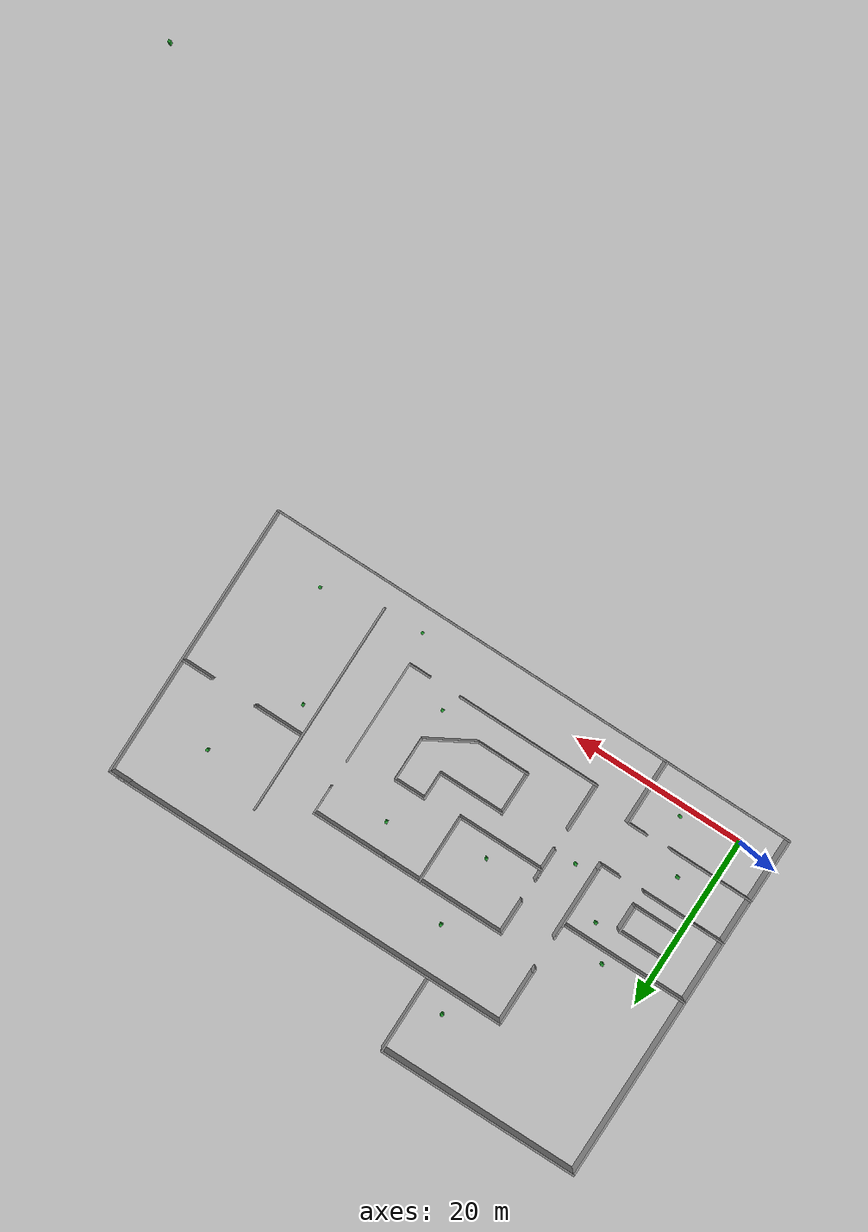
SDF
<sdf version="1.4">
 <world name="default">
  <light name="sun" type="directional">
   <pose>0 0 10 0 -0 0</pose>
   <diffuse>0.8 0.8 0.8 1</diffuse>
   <specular>0.2 0.2 0.2 1</specular>
   <attenuation>
    <range>1000</range>
    <constant>0.9</constant>
    <linear>0.01</linear>
    <quadratic>0.001</quadratic>
   </attenuation>
   <direction>-0.5 0.1 -0.9</direction>
  </light>
  <model name="ground_plane">
   <static>1</static>
   <link name="link">
    <collision name="collision">
     <geometry><plane><normal>0 0 1</normal><size>100 100</size></plane></geometry>
     <surface><friction><ode><mu>100</mu><mu2>50</mu2></ode></friction></surface>
    </collision>
    <visual name="visual">
     <cast_shadows>0</cast_shadows>
     <geometry><plane><normal>0 0 1</normal><size>100 100</size></plane></geometry>
     <material>
      <script><uri>file://media/materials/scripts/gazebo.material</uri><name>Gazebo/Grey</name></script>
     </material>
    </visual>
    <velocity_decay><linear>0</linear><angular>0</angular></velocity_decay>
   </link>
  </model>
  <physics type="ode">
   <max_step_size>0.001</max_step_size>
   <real_time_factor>1</real_time_factor>
   <real_time_update_rate>1000</real_time_update_rate>
   <gravity>0 0 -9.8</gravity>
  </physics>
  <scene><ambient>0.4 0.4 0.4 1</ambient><background>0.7 0.7 0.7 1</background><shadows>1</shadows></scene>
  <spherical_coordinates>
   <surface_model>EARTH_WGS84</surface_model>
   <latitude_deg>0</latitude_deg>
   <longitude_deg>0</longitude_deg>
   <elevation>0</elevation>
   <heading_deg>0</heading_deg>
  </spherical_coordinates>
  <model name="watchman_arena">
   <link name="Wall_14">
    <collision name="Wall_14_Collision">
     <geometry><box><size>7.90415 0.2 2.5</size></box></geometry>
     <pose>0 0 1.25 0 -0 0</pose>
    </collision>
    <visual name="Wall_14_Visual">
     <pose>0 0 1.25 0 -0 0</pose>
     <geometry><box><size>7.90415 0.2 2.5</size></box></geometry>
     <material>
      <script><uri>file://media/materials/scripts/gazebo.material</uri><name>Gazebo/Grey</name></script>
     </material>
    </visual>
    <velocity_decay><linear>0</linear><angular>0</angular></velocity_decay>
    <pose>4.93429 1.11862 0 0 0 -1.5708</pose>
   </link>
   <link name="Wall_15">
    <collision name="Wall_15_Collision">
     <geometry><box><size>10.1204 0.2 2.5</size></box></geometry>
     <pose>0 0 1.25 0 -0 0</pose>
    </collision>
    <visual name="Wall_15_Visual">
     <pose>0 0 1.25 0 -0 0</pose>
     <geometry><box><size>10.1204 0.2 2.5</size></box></geometry>
     <material>
      <script><uri>file://media/materials/scripts/gazebo.material</uri><name>Gazebo/Grey</name></script>
     </material>
    </visual>
    <velocity_decay><linear>0</linear><angular>0</angular></velocity_decay>
    <pose>-0.025919 -2.73345 0 0 -0 3.14159</pose>
   </link>
   <link name="Wall_16">
    <collision name="Wall_16_Collision">
     <geometry><box><size>1.46643 0.2 2.5</size></box></geometry>
     <pose>0 0 1.25 0 -0 0</pose>
    </collision>
    <visual name="Wall_16_Visual">
     <pose>0 0 1.25 0 -0 0</pose>
     <geometry><box><size>1.46643 0.2 2.5</size></box></geometry>
     <material>
      <script><uri>file://media/materials/scripts/gazebo.material</uri><name>Gazebo/Grey</name></script>
     </material>
    </visual>
    <velocity_decay><linear>0</linear><angular>0</angular></velocity_decay>
    <pose>-4.98613 -2.10024 0 0 -0 1.5708</pose>
   </link>
   <link name="Wall_17">
    <collision name="Wall_17_Collision">
     <geometry><box><size>3.89377 0.2 2.5</size></box></geometry>
     <pose>0 0 1.25 0 -0 0</pose>
    </collision>
    <visual name="Wall_17_Visual">
     <pose>0 0 1.25 0 -0 0</pose>
     <geometry><box><size>3.89377 0.2 2.5</size></box></geometry>
     <material>
      <script><uri>file://media/materials/scripts/gazebo.material</uri><name>Gazebo/Grey</name></script>
     </material>
    </visual>
    <velocity_decay><linear>0</linear><angular>0</angular></velocity_decay>
    <pose>-4.98613 -3.3139 0 0 0 -1.5708</pose>
   </link>
   <link name="Wall_23">
    <collision name="Wall_23_Collision">
     <geometry><box><size>5.58459 0.2 2.5</size></box></geometry>
     <pose>0 0 1.25 0 -0 0</pose>
    </collision>
    <visual name="Wall_23_Visual">
     <pose>0 0 1.25 0 -0 0</pose>
     <geometry><box><size>5.58459 0.2 2.5</size></box></geometry>
     <material>
      <script><uri>file://media/materials/scripts/gazebo.material</uri><name>Gazebo/Grey</name></script>
     </material>
    </visual>
    <velocity_decay><linear>0</linear><angular>0</angular></velocity_decay>
    <pose>-4.994 -10.3752 0 0 0 -1.5708</pose>
   </link>
   <link name="Wall_24">
    <collision name="Wall_24_Collision">
     <geometry><box><size>16.8586 0.2 2.5</size></box></geometry>
     <pose>0 0 1.25 0 -0 0</pose>
    </collision>
    <visual name="Wall_24_Visual">
     <pose>0 0 1.25 0 -0 0</pose>
     <geometry><box><size>16.8586 0.2 2.5</size></box></geometry>
     <material>
      <script><uri>file://media/materials/scripts/gazebo.material</uri><name>Gazebo/Grey</name></script>
     </material>
    </visual>
    <velocity_decay><linear>0</linear><angular>0</angular></velocity_decay>
    <pose>3.3353 -13.0675 0 0 -0 0</pose>
   </link>
   <link name="Wall_26">
    <collision name="Wall_26_Collision">
     <geometry><box><size>11.9967 0.2 2.5</size></box></geometry>
     <pose>0 0 1.25 0 -0 0</pose>
    </collision>
    <visual name="Wall_26_Visual">
     <pose>0 0 1.25 0 -0 0</pose>
     <geometry><box><size>11.9967 0.2 2.5</size></box></geometry>
     <material>
      <script><uri>file://media/materials/scripts/gazebo.material</uri><name>Gazebo/Grey</name></script>
     </material>
    </visual>
    <velocity_decay><linear>0</linear><angular>0</angular></velocity_decay>
    <pose>17.8634 -7.19918 0 0 0 -1.5708</pose>
   </link>
   <link name="Wall_27">
    <collision name="Wall_27_Collision">
     <geometry><box><size>2.68305 0.2 2.5</size></box></geometry>
     <pose>0 0 1.25 0 -0 0</pose>
    </collision>
    <visual name="Wall_27_Visual">
     <pose>0 0 1.25 0 -0 0</pose>
     <geometry><box><size>2.68305 0.2 2.5</size></box></geometry>
     <material>
      <script><uri>file://media/materials/scripts/gazebo.material</uri><name>Gazebo/Grey</name></script>
     </material>
    </visual>
    <velocity_decay><linear>0</linear><angular>0</angular></velocity_decay>
    <pose>16.6219 -13.0975 0 0 -0 3.14159</pose>
   </link>
   <link name="Wall_29">
    <collision name="Wall_29_Collision">
     <geometry><box><size>7.64487 0.2 2.5</size></box></geometry>
     <pose>0 0 1.25 0 -0 0</pose>
    </collision>
    <visual name="Wall_29_Visual">
     <pose>0 0 1.25 0 -0 0</pose>
     <geometry><box><size>7.64487 0.2 2.5</size></box></geometry>
     <material>
      <script><uri>file://media/materials/scripts/gazebo.material</uri><name>Gazebo/Grey</name></script>
     </material>
    </visual>
    <velocity_decay><linear>0</linear><angular>0</angular></velocity_decay>
    <pose>5.38208 -5.40656 0 0 -0 0</pose>
   </link>
   <link name="Wall_3">
    <collision name="Wall_3_Collision">
     <geometry><box><size>4.07797 0.2 2.5</size></box></geometry>
     <pose>0 0 1.25 0 -0 0</pose>
    </collision>
    <visual name="Wall_3_Visual">
     <pose>0 0 1.25 0 -0 0</pose>
     <geometry><box><size>4.07797 0.2 2.5</size></box></geometry>
     <material>
      <script><uri>file://media/materials/scripts/gazebo.material</uri><name>Gazebo/Grey</name></script>
     </material>
    </visual>
    <velocity_decay><linear>0</linear><angular>0</angular></velocity_decay>
    <pose>-4.98885 3.06689 0 0 -0 1.5708</pose>
   </link>
   <link name="Wall_30">
    <collision name="Wall_30_Collision">
     <geometry><box><size>3.27639 0.2 2.5</size></box></geometry>
     <pose>0 0 1.25 0 -0 0</pose>
    </collision>
    <visual name="Wall_30_Visual">
     <pose>0 0 1.25 0 -0 0</pose>
     <geometry><box><size>3.27639 0.2 2.5</size></box></geometry>
     <material>
      <script><uri>file://media/materials/scripts/gazebo.material</uri><name>Gazebo/Grey</name></script>
     </material>
    </visual>
    <velocity_decay><linear>0</linear><angular>0</angular></velocity_decay>
    <pose>9.10452 -3.86836 0 0 -0 1.5708</pose>
   </link>
   <link name="Wall_31">
    <collision name="Wall_31_Collision">
     <geometry><box><size>3.76862 0.2 2.5</size></box></geometry>
     <pose>0 0 1.25 0 -0 0</pose>
    </collision>
    <visual name="Wall_31_Visual">
     <pose>0 0 1.25 0 -0 0</pose>
     <geometry><box><size>3.76862 0.2 2.5</size></box></geometry>
     <material>
      <script><uri>file://media/materials/scripts/gazebo.material</uri><name>Gazebo/Grey</name></script>
     </material>
    </visual>
    <velocity_decay><linear>0</linear><angular>0</angular></velocity_decay>
    <pose>10.8888 -2.33016 0 0 -0 0</pose>
   </link>
   <link name="Wall_32">
    <collision name="Wall_32_Collision">
     <geometry><box><size>5.18376 0.2 2.5</size></box></geometry>
     <pose>0 0 1.25 0 -0 0</pose>
    </collision>
    <visual name="Wall_32_Visual">
     <pose>0 0 1.25 0 -0 0</pose>
     <geometry><box><size>5.18376 0.2 2.5</size></box></geometry>
     <material>
      <script><uri>file://media/materials/scripts/gazebo.material</uri><name>Gazebo/Grey</name></script>
     </material>
    </visual>
    <velocity_decay><linear>0</linear><angular>0</angular></velocity_decay>
    <pose>12.6731 -4.82204 0 0 0 -1.5708</pose>
   </link>
   <link name="Wall_33">
    <collision name="Wall_33_Collision">
     <geometry><box><size>6.01528 0.2 2.5</size></box></geometry>
     <pose>0 0 1.25 0 -0 0</pose>
    </collision>
    <visual name="Wall_33_Visual">
     <pose>0 0 1.25 0 -0 0</pose>
     <geometry><box><size>6.01528 0.2 2.5</size></box></geometry>
     <material>
      <script><uri>file://media/materials/scripts/gazebo.material</uri><name>Gazebo/Grey</name></script>
     </material>
    </visual>
    <velocity_decay><linear>0</linear><angular>0</angular></velocity_decay>
    <pose>10.1505 -8.75982 0 0 0 -2.62113</pose>
   </link>
   <link name="Wall_34">
    <collision name="Wall_34_Collision">
     <geometry><box><size>6.22973 0.2 2.5</size></box></geometry>
     <pose>0 0 1.25 0 -0 0</pose>
    </collision>
    <visual name="Wall_34_Visual">
     <pose>0 0 1.25 0 -0 0</pose>
     <geometry><box><size>6.22973 0.2 2.5</size></box></geometry>
     <material>
      <script><uri>file://media/materials/scripts/gazebo.material</uri><name>Gazebo/Grey</name></script>
     </material>
    </visual>
    <velocity_decay><linear>0</linear><angular>0</angular></velocity_decay>
    <pose>4.61299 -10.2057 0 0 -0 3.14159</pose>
   </link>
   <link name="Wall_35">
    <collision name="Wall_35_Collision">
     <geometry><box><size>5.0607 0.2 2.5</size></box></geometry>
     <pose>0 0 1.25 0 -0 0</pose>
    </collision>
    <visual name="Wall_35_Visual">
     <pose>0 0 1.25 0 -0 0</pose>
     <geometry><box><size>5.0607 0.2 2.5</size></box></geometry>
     <material>
      <script><uri>file://media/materials/scripts/gazebo.material</uri><name>Gazebo/Grey</name></script>
     </material>
    </visual>
    <velocity_decay><linear>0</linear><angular>0</angular></velocity_decay>
    <pose>1.59812 -7.77538 0 0 -0 1.5708</pose>
   </link>
   <link name="Wall_37">
    <collision name="Wall_37_Collision">
     <geometry><box><size>24.6234 0.2 2.5</size></box></geometry>
     <pose>0 0 1.25 0 -0 0</pose>
    </collision>
    <visual name="Wall_37_Visual">
     <pose>0 0 1.25 0 -0 0</pose>
     <geometry><box><size>24.6234 0.2 2.5</size></box></geometry>
     <material>
      <script><uri>file://media/materials/scripts/gazebo.material</uri><name>Gazebo/Grey</name></script>
     </material>
    </visual>
    <velocity_decay><linear>0</linear><angular>0</angular></velocity_decay>
    <pose>23.1272 -4.24752 0 0 0 -1.5708</pose>
   </link>
   <link name="Wall_38">
    <collision name="Wall_38_Collision">
     <geometry><box><size>15.7337 0.2 2.5</size></box></geometry>
     <pose>0 0 1.25 0 -0 0</pose>
    </collision>
    <visual name="Wall_38_Visual">
     <pose>0 0 1.25 0 -0 0</pose>
     <geometry><box><size>15.7337 0.2 2.5</size></box></geometry>
     <material>
      <script><uri>file://media/materials/scripts/gazebo.material</uri><name>Gazebo/Grey</name></script>
     </material>
    </visual>
    <velocity_decay><linear>0</linear><angular>0</angular></velocity_decay>
    <pose>23.1272 -8.69239 0 0 -0 1.5708</pose>
   </link>
   <link name="Wall_39">
    <collision name="Wall_39_Collision">
     <geometry><box><size>5.90815 0.2 2.5</size></box></geometry>
     <pose>0 0 1.25 0 -0 0</pose>
    </collision>
    <visual name="Wall_39_Visual">
     <pose>0 0 1.25 0 -0 0</pose>
     <geometry><box><size>5.90815 0.2 2.5</size></box></geometry>
     <material>
      <script><uri>file://media/materials/scripts/gazebo.material</uri><name>Gazebo/Grey</name></script>
     </material>
    </visual>
    <velocity_decay><linear>0</linear><angular>0</angular></velocity_decay>
    <pose>25.9813 -0.925564 0 0 -0 0</pose>
   </link>
   <link name="Wall_4">
    <collision name="Wall_4_Collision">
     <geometry><box><size>14.5557 0.2 2.5</size></box></geometry>
     <pose>0 0 1.25 0 -0 0</pose>
    </collision>
    <visual name="Wall_4_Visual">
     <pose>0 0 1.25 0 -0 0</pose>
     <geometry><box><size>14.5557 0.2 2.5</size></box></geometry>
     <material>
      <script><uri>file://media/materials/scripts/gazebo.material</uri><name>Gazebo/Grey</name></script>
     </material>
    </visual>
    <velocity_decay><linear>0</linear><angular>0</angular></velocity_decay>
    <pose>2.18898 5.00587 0 0 -0 0</pose>
   </link>
   <link name="Wall_40">
    <collision name="Wall_40_Collision">
     <geometry><box><size>0.387152 0.2 2.5</size></box></geometry>
     <pose>0 0 1.25 0 -0 0</pose>
    </collision>
    <visual name="Wall_40_Visual">
     <pose>0 0 1.25 0 -0 0</pose>
     <geometry><box><size>0.387152 0.2 2.5</size></box></geometry>
     <material>
      <script><uri>file://media/materials/scripts/gazebo.material</uri><name>Gazebo/Grey</name></script>
     </material>
    </visual>
    <velocity_decay><linear>0</linear><angular>0</angular></velocity_decay>
    <pose>28.7418 -0.925564 0 0 -0 3.14159</pose>
   </link>
   <link name="Wall_46">
    <collision name="Wall_46_Collision">
     <geometry><box><size>46.801 0.2 2.5</size></box></geometry>
     <pose>0 0 1.25 0 -0 0</pose>
    </collision>
    <visual name="Wall_46_Visual">
     <pose>0 0 1.25 0 -0 0</pose>
     <geometry><box><size>46.801 0.2 2.5</size></box></geometry>
     <material>
      <script><uri>file://media/materials/scripts/gazebo.material</uri><name>Gazebo/Grey</name></script>
     </material>
    </visual>
    <velocity_decay><linear>0</linear><angular>0</angular></velocity_decay>
    <pose>13.3965 12.8024 0 0 -0 3.14159</pose>
   </link>
   <link name="Wall_47">
    <collision name="Wall_47_Collision">
     <geometry><box><size>6.46961 0.2 2.5</size></box></geometry>
     <pose>0 0 1.25 0 -0 0</pose>
    </collision>
    <visual name="Wall_47_Visual">
     <pose>0 0 1.25 0 -0 0</pose>
     <geometry><box><size>6.46961 0.2 2.5</size></box></geometry>
     <material>
      <script><uri>file://media/materials/scripts/gazebo.material</uri><name>Gazebo/Grey</name></script>
     </material>
    </visual>
    <velocity_decay><linear>0</linear><angular>0</angular></velocity_decay>
    <pose>-9.90394 9.66757 0 0 0 -1.5708</pose>
   </link>
   <link name="Wall_48">
    <collision name="Wall_48_Collision">
     <geometry><box><size>0.574305 0.2 2.5</size></box></geometry>
     <pose>0 0 1.25 0 -0 0</pose>
    </collision>
    <visual name="Wall_48_Visual">
     <pose>0 0 1.25 0 -0 0</pose>
     <geometry><box><size>0.574305 0.2 2.5</size></box></geometry>
     <material>
      <script><uri>file://media/materials/scripts/gazebo.material</uri><name>Gazebo/Grey</name></script>
     </material>
    </visual>
    <velocity_decay><linear>0</linear><angular>0</angular></velocity_decay>
    <pose>-9.90394 6.34562 0 0 0 -1.5708</pose>
   </link>
   <link name="Wall_5">
    <collision name="Wall_5_Collision">
     <geometry><box><size>8.6429 0.2 2.5</size></box></geometry>
     <pose>0 0 1.25 0 -0 0</pose>
    </collision>
    <visual name="Wall_5_Visual">
     <pose>0 0 1.25 0 -0 0</pose>
     <geometry><box><size>8.6429 0.2 2.5</size></box></geometry>
     <material>
      <script><uri>file://media/materials/scripts/gazebo.material</uri><name>Gazebo/Grey</name></script>
     </material>
    </visual>
    <velocity_decay><linear>0</linear><angular>0</angular></velocity_decay>
    <pose>13.5883 5.00587 0 0 -0 0</pose>
   </link>
   <link name="Wall_50">
    <collision name="Wall_50_Collision">
     <geometry><box><size>10.6805 0.2 2.5</size></box></geometry>
     <pose>0 0 1.25 0 -0 0</pose>
    </collision>
    <visual name="Wall_50_Visual">
     <pose>0 0 1.25 0 -0 0</pose>
     <geometry><box><size>10.6805 0.2 2.5</size></box></geometry>
     <material>
      <script><uri>file://media/materials/scripts/gazebo.material</uri><name>Gazebo/Grey</name></script>
     </material>
    </visual>
    <velocity_decay><linear>0</linear><angular>0</angular></velocity_decay>
    <pose>-15.3314 0.731043 0 0 -0 0</pose>
   </link>
   <link name="Wall_51">
    <collision name="Wall_51_Collision">
     <geometry><box><size>0.480729 0.2 2.5</size></box></geometry>
     <pose>0 0 1.25 0 -0 0</pose>
    </collision>
    <visual name="Wall_51_Visual">
     <pose>0 0 1.25 0 -0 0</pose>
     <geometry><box><size>0.480729 0.2 2.5</size></box></geometry>
     <material>
      <script><uri>file://media/materials/scripts/gazebo.material</uri><name>Gazebo/Grey</name></script>
     </material>
    </visual>
    <velocity_decay><linear>0</linear><angular>0</angular></velocity_decay>
    <pose>-9.95073 0.731043 0 0 -0 0</pose>
   </link>
   <link name="Wall_52">
    <collision name="Wall_52_Collision">
     <geometry><box><size>1.88437 0.2 2.5</size></box></geometry>
     <pose>0 0 1.25 0 -0 0</pose>
    </collision>
    <visual name="Wall_52_Visual">
     <pose>0 0 1.25 0 -0 0</pose>
     <geometry><box><size>1.88437 0.2 2.5</size></box></geometry>
     <material>
      <script><uri>file://media/materials/scripts/gazebo.material</uri><name>Gazebo/Grey</name></script>
     </material>
    </visual>
    <velocity_decay><linear>0</linear><angular>0</angular></velocity_decay>
    <pose>-9.81036 1.57323 0 0 -0 1.5708</pose>
   </link>
   <link name="Wall_53">
    <collision name="Wall_53_Collision">
     <geometry><box><size>8.52828 0.2 2.5</size></box></geometry>
     <pose>0 0 1.25 0 -0 0</pose>
    </collision>
    <visual name="Wall_53_Visual">
     <pose>0 0 1.25 0 -0 0</pose>
     <geometry><box><size>8.52828 0.2 2.5</size></box></geometry>
     <material>
      <script><uri>file://media/materials/scripts/gazebo.material</uri><name>Gazebo/Grey</name></script>
     </material>
    </visual>
    <velocity_decay><linear>0</linear><angular>0</angular></velocity_decay>
    <pose>-9.81036 -1.74873 0 0 0 -1.5708</pose>
   </link>
   <link name="Wall_54">
    <collision name="Wall_54_Collision">
     <geometry><box><size>0.761457 0.2 2.5</size></box></geometry>
     <pose>0 0 1.25 0 -0 0</pose>
    </collision>
    <visual name="Wall_54_Visual">
     <pose>0 0 1.25 0 -0 0</pose>
     <geometry><box><size>0.761457 0.2 2.5</size></box></geometry>
     <material>
      <script><uri>file://media/materials/scripts/gazebo.material</uri><name>Gazebo/Grey</name></script>
     </material>
    </visual>
    <velocity_decay><linear>0</linear><angular>0</angular></velocity_decay>
    <pose>-9.81036 -6.1936 0 0 0 -1.5708</pose>
   </link>
   <link name="Wall_55">
    <collision name="Wall_55_Collision">
     <geometry><box><size>2.35225 0.2 2.5</size></box></geometry>
     <pose>0 0 1.25 0 -0 0</pose>
    </collision>
    <visual name="Wall_55_Visual">
     <pose>0 0 1.25 0 -0 0</pose>
     <geometry><box><size>2.35225 0.2 2.5</size></box></geometry>
     <material>
      <script><uri>file://media/materials/scripts/gazebo.material</uri><name>Gazebo/Grey</name></script>
     </material>
    </visual>
    <velocity_decay><linear>0</linear><angular>0</angular></velocity_decay>
    <pose>-10.8865 -6.47433 0 0 -0 3.14159</pose>
   </link>
   <link name="Wall_57">
    <collision name="Wall_57_Collision">
     <geometry><box><size>8.91662 0.2 2.5</size></box></geometry>
     <pose>0 0 1.25 0 -0 0</pose>
    </collision>
    <visual name="Wall_57_Visual">
     <pose>0 0 1.25 0 -0 0</pose>
     <geometry><box><size>8.91662 0.2 2.5</size></box></geometry>
     <material>
      <script><uri>file://media/materials/scripts/gazebo.material</uri><name>Gazebo/Grey</name></script>
     </material>
    </visual>
    <velocity_decay><linear>0</linear><angular>0</angular></velocity_decay>
    <pose>-1.24883 17.3071 0 0 -0 1.5708</pose>
   </link>
   <link name="Wall_58">
    <collision name="Wall_58_Collision">
     <geometry><box><size>23.5519 0.2 2.5</size></box></geometry>
     <pose>0 0 1.25 0 -0 0</pose>
    </collision>
    <visual name="Wall_58_Visual">
     <pose>0 0 1.25 0 -0 0</pose>
     <geometry><box><size>23.5519 0.2 2.5</size></box></geometry>
     <material>
      <script><uri>file://media/materials/scripts/gazebo.material</uri><name>Gazebo/Grey</name></script>
     </material>
    </visual>
    <velocity_decay><linear>0</linear><angular>0</angular></velocity_decay>
    <pose>-12.9248 21.6654 0 0 -0 3.14159</pose>
   </link>
   <link name="Wall_59">
    <collision name="Wall_59_Collision">
     <geometry><box><size>21.1689 0.2 2.5</size></box></geometry>
     <pose>0 0 1.25 0 -0 0</pose>
    </collision>
    <visual name="Wall_59_Visual">
     <pose>0 0 1.25 0 -0 0</pose>
     <geometry><box><size>21.1689 0.2 2.5</size></box></geometry>
     <material>
      <script><uri>file://media/materials/scripts/gazebo.material</uri><name>Gazebo/Grey</name></script>
     </material>
    </visual>
    <velocity_decay><linear>0</linear><angular>0</angular></velocity_decay>
    <pose>-24.6008 11.181 0 0 0 -1.5708</pose>
   </link>
   <link name="Wall_6">
    <collision name="Wall_6_Collision">
     <geometry><box><size>3.26055 0.2 2.5</size></box></geometry>
     <pose>0 0 1.25 0 -0 0</pose>
    </collision>
    <visual name="Wall_6_Visual">
     <pose>0 0 1.25 0 -0 0</pose>
     <geometry><box><size>3.26055 0.2 2.5</size></box></geometry>
     <material>
      <script><uri>file://media/materials/scripts/gazebo.material</uri><name>Gazebo/Grey</name></script>
     </material>
    </visual>
    <velocity_decay><linear>0</linear><angular>0</angular></velocity_decay>
    <pose>17.8097 3.4756 0 0 0 -1.5708</pose>
   </link>
   <link name="Wall_60">
    <collision name="Wall_60_Collision">
     <geometry><box><size>4.41556 0.2 2.5</size></box></geometry>
     <pose>0 0 1.25 0 -0 0</pose>
    </collision>
    <visual name="Wall_60_Visual">
     <pose>0 0 1.25 0 -0 0</pose>
     <geometry><box><size>4.41556 0.2 2.5</size></box></geometry>
     <material>
      <script><uri>file://media/materials/scripts/gazebo.material</uri><name>Gazebo/Grey</name></script>
     </material>
    </visual>
    <velocity_decay><linear>0</linear><angular>0</angular></velocity_decay>
    <pose>-22.493 0.696532 0 0 -0 0</pose>
   </link>
   <link name="Wall_62">
    <collision name="Wall_62_Collision">
     <geometry><box><size>3.12934 0.2 2.5</size></box></geometry>
     <pose>0 0 1.25 0 -0 0</pose>
    </collision>
    <visual name="Wall_62_Visual">
     <pose>0 0 1.25 0 -0 0</pose>
     <geometry><box><size>3.12934 0.2 2.5</size></box></geometry>
     <material>
      <script><uri>file://media/materials/scripts/gazebo.material</uri><name>Gazebo/Grey</name></script>
     </material>
    </visual>
    <velocity_decay><linear>0</linear><angular>0</angular></velocity_decay>
    <pose>-20.4859 -3.32865 0 0 0 -1.5708</pose>
   </link>
   <link name="Wall_63">
    <collision name="Wall_63_Collision">
     <geometry><box><size>5.65183 0.2 2.5</size></box></geometry>
     <pose>0 0 1.25 0 -0 0</pose>
    </collision>
    <visual name="Wall_63_Visual">
     <pose>0 0 1.25 0 -0 0</pose>
     <geometry><box><size>5.65183 0.2 2.5</size></box></geometry>
     <material>
      <script><uri>file://media/materials/scripts/gazebo.material</uri><name>Gazebo/Grey</name></script>
     </material>
    </visual>
    <velocity_decay><linear>0</linear><angular>0</angular></velocity_decay>
    <pose>-17.76 -4.79332 0 0 -0 0</pose>
   </link>
   <link name="Wall_64">
    <collision name="Wall_64_Collision">
     <geometry><box><size>3.21071 0.2 2.5</size></box></geometry>
     <pose>0 0 1.25 0 -0 0</pose>
    </collision>
    <visual name="Wall_64_Visual">
     <pose>0 0 1.25 0 -0 0</pose>
     <geometry><box><size>3.21071 0.2 2.5</size></box></geometry>
     <material>
      <script><uri>file://media/materials/scripts/gazebo.material</uri><name>Gazebo/Grey</name></script>
     </material>
    </visual>
    <velocity_decay><linear>0</linear><angular>0</angular></velocity_decay>
    <pose>-15.0341 -3.28796 0 0 -0 1.5708</pose>
   </link>
   <link name="Wall_65">
    <collision name="Wall_65_Collision">
     <geometry><box><size>5.57046 0.2 2.5</size></box></geometry>
     <pose>0 0 1.25 0 -0 0</pose>
    </collision>
    <visual name="Wall_65_Visual">
     <pose>0 0 1.25 0 -0 0</pose>
     <geometry><box><size>5.57046 0.2 2.5</size></box></geometry>
     <material>
      <script><uri>file://media/materials/scripts/gazebo.material</uri><name>Gazebo/Grey</name></script>
     </material>
    </visual>
    <velocity_decay><linear>0</linear><angular>0</angular></velocity_decay>
    <pose>-17.7193 -1.78261 0 0 -0 3.14159</pose>
   </link>
   <link name="Wall_67">
    <collision name="Wall_67_Collision">
     <geometry><box><size>7.41121 0.2 2.5</size></box></geometry>
     <pose>0 0 1.25 0 -0 0</pose>
    </collision>
    <visual name="Wall_67_Visual">
     <pose>0 0 1.25 0 -0 0</pose>
     <geometry><box><size>7.41121 0.2 2.5</size></box></geometry>
     <material>
      <script><uri>file://media/materials/scripts/gazebo.material</uri><name>Gazebo/Grey</name></script>
     </material>
    </visual>
    <velocity_decay><linear>0</linear><angular>0</angular></velocity_decay>
    <pose>-24.6051 -2.90401 0 0 0 -1.5708</pose>
   </link>
   <link name="Wall_68">
    <collision name="Wall_68_Collision">
     <geometry><box><size>9.7374 0.2 2.5</size></box></geometry>
     <pose>0 0 1.25 0 -0 0</pose>
    </collision>
    <visual name="Wall_68_Visual">
     <pose>0 0 1.25 0 -0 0</pose>
     <geometry><box><size>9.7374 0.2 2.5</size></box></geometry>
     <material>
      <script><uri>file://media/materials/scripts/gazebo.material</uri><name>Gazebo/Grey</name></script>
     </material>
    </visual>
    <velocity_decay><linear>0</linear><angular>0</angular></velocity_decay>
    <pose>-19.8364 -6.50962 0 0 -0 0</pose>
   </link>
   <link name="Wall_69">
    <collision name="Wall_69_Collision">
     <geometry><box><size>9.7374 0.2 2.5</size></box></geometry>
     <pose>0 0 1.25 0 -0 0</pose>
    </collision>
    <visual name="Wall_69_Visual">
     <pose>0 0 1.25 0 -0 0</pose>
     <geometry><box><size>9.7374 0.2 2.5</size></box></geometry>
     <material>
      <script><uri>file://media/materials/scripts/gazebo.material</uri><name>Gazebo/Grey</name></script>
     </material>
    </visual>
    <velocity_decay><linear>0</linear><angular>0</angular></velocity_decay>
    <pose>-19.8364 -6.50962 0 0 -0 3.14159</pose>
   </link>
   <link name="Wall_70">
    <collision name="Wall_70_Collision">
     <geometry><box><size>5.37271 0.2 2.5</size></box></geometry>
     <pose>0 0 1.25 0 -0 0</pose>
    </collision>
    <visual name="Wall_70_Visual">
     <pose>0 0 1.25 0 -0 0</pose>
     <geometry><box><size>5.37271 0.2 2.5</size></box></geometry>
     <material>
      <script><uri>file://media/materials/scripts/gazebo.material</uri><name>Gazebo/Grey</name></script>
     </material>
    </visual>
    <velocity_decay><linear>0</linear><angular>0</angular></velocity_decay>
    <pose>-24.6051 -9.09597 0 0 0 -1.5708</pose>
   </link>
   <link name="Wall_71">
    <collision name="Wall_71_Collision">
     <geometry><box><size>9.80738 0.2 2.5</size></box></geometry>
     <pose>0 0 1.25 0 -0 0</pose>
    </collision>
    <visual name="Wall_71_Visual">
     <pose>0 0 1.25 0 -0 0</pose>
     <geometry><box><size>9.80738 0.2 2.5</size></box></geometry>
     <material>
      <script><uri>file://media/materials/scripts/gazebo.material</uri><name>Gazebo/Grey</name></script>
     </material>
    </visual>
    <velocity_decay><linear>0</linear><angular>0</angular></velocity_decay>
    <pose>-19.8014 -11.6823 0 0 -0 0</pose>
   </link>
   <link name="Wall_73">
    <collision name="Wall_73_Collision">
     <geometry><box><size>2.47838 0.2 2.5</size></box></geometry>
     <pose>0 0 1.25 0 -0 0</pose>
    </collision>
    <visual name="Wall_73_Visual">
     <pose>0 0 1.25 0 -0 0</pose>
     <geometry><box><size>2.47838 0.2 2.5</size></box></geometry>
     <material>
      <script><uri>file://media/materials/scripts/gazebo.material</uri><name>Gazebo/Grey</name></script>
     </material>
    </visual>
    <velocity_decay><linear>0</linear><angular>0</angular></velocity_decay>
    <pose>-10.88 -11.5815 0 0 -0 0</pose>
   </link>
   <link name="Wall_74">
    <collision name="Wall_74_Collision">
     <geometry><box><size>7.60473 0.2 2.5</size></box></geometry>
     <pose>0 0 1.25 0 -0 0</pose>
    </collision>
    <visual name="Wall_74_Visual">
     <pose>0 0 1.25 0 -0 0</pose>
     <geometry><box><size>7.60473 0.2 2.5</size></box></geometry>
     <material>
      <script><uri>file://media/materials/scripts/gazebo.material</uri><name>Gazebo/Grey</name></script>
     </material>
    </visual>
    <velocity_decay><linear>0</linear><angular>0</angular></velocity_decay>
    <pose>-9.74082 -15.2839 0 0 0 -1.5708</pose>
   </link>
   <link name="Wall_75">
    <collision name="Wall_75_Collision">
     <geometry><box><size>15.0908 0.2 2.5</size></box></geometry>
     <pose>0 0 1.25 0 -0 0</pose>
    </collision>
    <visual name="Wall_75_Visual">
     <pose>0 0 1.25 0 -0 0</pose>
     <geometry><box><size>15.0908 0.2 2.5</size></box></geometry>
     <material>
      <script><uri>file://media/materials/scripts/gazebo.material</uri><name>Gazebo/Grey</name></script>
     </material>
    </visual>
    <velocity_decay><linear>0</linear><angular>0</angular></velocity_decay>
    <pose>-17.1862 -18.9863 0 0 -0 3.14159</pose>
   </link>
   <link name="Wall_76">
    <collision name="Wall_76_Collision">
     <geometry><box><size>7.60473 0.2 2.5</size></box></geometry>
     <pose>0 0 1.25 0 -0 0</pose>
    </collision>
    <visual name="Wall_76_Visual">
     <pose>0 0 1.25 0 -0 0</pose>
     <geometry><box><size>7.60473 0.2 2.5</size></box></geometry>
     <material>
      <script><uri>file://media/materials/scripts/gazebo.material</uri><name>Gazebo/Grey</name></script>
     </material>
    </visual>
    <velocity_decay><linear>0</linear><angular>0</angular></velocity_decay>
    <pose>-24.6316 -15.2839 0 0 -0 1.5708</pose>
   </link>
   <link name="Wall_78">
    <collision name="Wall_78_Collision">
     <geometry><box><size>47.6391 0.2 2.5</size></box></geometry>
     <pose>0 0 1.25 0 -0 0</pose>
    </collision>
    <visual name="Wall_78_Visual">
     <pose>0 0 1.25 0 -0 0</pose>
     <geometry><box><size>47.6391 0.2 2.5</size></box></geometry>
     <material>
      <script><uri>file://media/materials/scripts/gazebo.material</uri><name>Gazebo/Grey</name></script>
     </material>
    </visual>
    <velocity_decay><linear>0</linear><angular>0</angular></velocity_decay>
    <pose>13.9733 -18.9881 0 0 -0 0</pose>
   </link>
   <link name="Wall_79">
    <collision name="Wall_79_Collision">
     <geometry><box><size>31.9345 0.2 2.5</size></box></geometry>
     <pose>0 0 1.25 0 -0 0</pose>
    </collision>
    <visual name="Wall_79_Visual">
     <pose>0 0 1.25 0 -0 0</pose>
     <geometry><box><size>31.9345 0.2 2.5</size></box></geometry>
     <material>
      <script><uri>file://media/materials/scripts/gazebo.material</uri><name>Gazebo/Grey</name></script>
     </material>
    </visual>
    <velocity_decay><linear>0</linear><angular>0</angular></velocity_decay>
    <pose>37.6928 -3.12081 0 0 -0 1.5708</pose>
   </link>
   <link name="Wall_80">
    <collision name="Wall_80_Collision">
     <geometry><box><size>2.39701 0.2 2.5</size></box></geometry>
     <pose>0 0 1.25 0 -0 0</pose>
    </collision>
    <visual name="Wall_80_Visual">
     <pose>0 0 1.25 0 -0 0</pose>
     <geometry><box><size>2.39701 0.2 2.5</size></box></geometry>
     <material>
      <script><uri>file://media/materials/scripts/gazebo.material</uri><name>Gazebo/Grey</name></script>
     </material>
    </visual>
    <velocity_decay><linear>0</linear><angular>0</angular></velocity_decay>
    <pose>36.5943 12.7465 0 0 -0 3.14159</pose>
   </link>
   <link name="Wall_82">
    <collision name="Wall_82_Collision">
     <geometry><box><size>3.61757 0.2 2.5</size></box></geometry>
     <pose>0 0 1.25 0 -0 0</pose>
    </collision>
    <visual name="Wall_82_Visual">
     <pose>0 0 1.25 0 -0 0</pose>
     <geometry><box><size>3.61757 0.2 2.5</size></box></geometry>
     <material>
      <script><uri>file://media/materials/scripts/gazebo.material</uri><name>Gazebo/Grey</name></script>
     </material>
    </visual>
    <velocity_decay><linear>0</linear><angular>0</angular></velocity_decay>
    <pose>35.8213 -0.842432 0 0 -0 0</pose>
   </link>
   <static>1</static>
   <pose>20.8439 16.0026 0 0 0 -0.003926</pose>
  </model>
  <model name="unit_box_2">
   <pose>50.7144 1.20331 0.5 1e-06 2e-06 5.1e-05</pose>
   <link name="link">
    <inertial>
     <mass>1</mass>
     <inertia><ixx>0.3</ixx><ixy>0</ixy><ixz>0</ixz><iyy>0.3</iyy><iyz>0</iyz><izz>1</izz></inertia>
    </inertial>
    <collision name="collision"><geometry><box><size>-0.3 0.3 1</size></box></geometry></collision>
    <visual name="visual">
     <geometry><box><size>0.3 0.3 1</size></box></geometry>
     <material>
      <script><uri>file://media/materials/scripts/gazebo.material</uri><name>Gazebo/Green</name></script>
     </material>
    </visual>
    <velocity_decay><linear>0</linear><angular>0</angular></velocity_decay>
   </link>
   <static>0</static>
  </model>
  <model name="unit_box_3">
   <pose>39.2557 -0.514651 0.5 1e-06 -2e-06 -0.000329</pose>
   <link name="link">
    <inertial>
     <mass>1</mass>
     <inertia><ixx>0.3</ixx><ixy>0</ixy><ixz>0</ixz><iyy>0.3</iyy><iyz>0</iyz><izz>1</izz></inertia>
    </inertial>
    <collision name="collision"><geometry><box><size>0.3 0.3 1</size></box></geometry></collision>
    <visual name="visual">
     <geometry><box><size>0.3 0.3 1</size></box></geometry>
     <material>
      <script><uri>file://media/materials/scripts/gazebo.material</uri><name>Gazebo/Green</name></script>
     </material>
    </visual>
    <velocity_decay><linear>0</linear><angular>0</angular></velocity_decay>
   </link>
   <static>0</static>
  </model>
  <model name="unit_box_4">
   <pose>33.2095 5.08124 0.5 1e-06 1e-06 6.5e-05</pose>
   <link name="link">
    <inertial>
     <mass>1</mass>
     <inertia><ixx>0.3</ixx><ixy>0</ixy><ixz>0</ixz><iyy>0.3</iyy><iyz>0</iyz><izz>1</izz></inertia>
    </inertial>
    <collision name="collision"><geometry><box><size>0.3 0.3 1</size></box></geometry></collision>
    <visual name="visual">
     <geometry><box><size>0.3 0.3 1</size></box></geometry>
     <material>
      <script><uri>file://media/materials/scripts/gazebo.material</uri><name>Gazebo/Green</name></script>
     </material>
    </visual>
    <velocity_decay><linear>0</linear><angular>0</angular></velocity_decay>
   </link>
   <static>0</static>
  </model>
  <model name="unit_box_5">
   <pose>21.1366 15.5155 0.5 1e-06 2e-06 -1e-05</pose>
   <link name="link">
    <inertial>
     <mass>1</mass>
     <inertia><ixx>0.3</ixx><ixy>0</ixy><ixz>0</ixz><iyy>0.3</iyy><iyz>0</iyz><izz>1</izz></inertia>
    </inertial>
    <collision name="collision"><geometry><box><size>0.3 0.3 1</size></box></geometry></collision>
    <visual name="visual">
     <geometry><box><size>0.3 0.3 1</size></box></geometry>
     <material>
      <script><uri>file://media/materials/scripts/gazebo.material</uri><name>Gazebo/Green</name></script>
     </material>
    </visual>
    <velocity_decay><linear>0</linear><angular>0</angular></velocity_decay>
   </link>
   <static>0</static>
  </model>
  <model name="unit_box_6">
   <pose>13.0919 11.0189 0.5 2e-06 1e-06 -0.004974</pose>
   <link name="link">
    <inertial>
     <mass>1</mass>
     <inertia><ixx>0.3</ixx><ixy>0</ixy><ixz>0</ixz><iyy>0.3</iyy><iyz>0</iyz><izz>1</izz></inertia>
    </inertial>
    <collision name="collision"><geometry><box><size>0.3 0.3 1</size></box></geometry></collision>
    <visual name="visual">
     <geometry><box><size>0.3 0.3 1</size></box></geometry>
     <material>
      <script><uri>file://media/materials/scripts/gazebo.material</uri><name>Gazebo/Green</name></script>
     </material>
    </visual>
    <velocity_decay><linear>0</linear><angular>0</angular></velocity_decay>
   </link>
   <static>0</static>
  </model>
  <model name="unit_box_7">
   <pose>6.66043 1.05238 0.5 8.27181e-25 2e-06 -0.003013</pose>
   <link name="link">
    <inertial>
     <mass>1</mass>
     <inertia><ixx>0.3</ixx><ixy>0</ixy><ixz>0</ixz><iyy>0.3</iyy><iyz>0</iyz><izz>1</izz></inertia>
    </inertial>
    <collision name="collision"><geometry><box><size>0.3 0.3 1</size></box></geometry></collision>
    <visual name="visual">
     <geometry><box><size>0.3 0.3 1</size></box></geometry>
     <material>
      <script><uri>file://media/materials/scripts/gazebo.material</uri><name>Gazebo/Green</name></script>
     </material>
    </visual>
    <velocity_decay><linear>0</linear><angular>0</angular></velocity_decay>
   </link>
   <static>0</static>
  </model>
  <model name="unit_box_8">
   <pose>3.47525 6.47223 0.5 -2e-06 -1e-06 8.4e-05</pose>
   <link name="link">
    <inertial>
     <mass>1</mass>
     <inertia><ixx>0.3</ixx><ixy>0</ixy><ixz>0</ixz><iyy>0.3</iyy><iyz>0</iyz><izz>1</izz></inertia>
    </inertial>
    <collision name="collision"><geometry><box><size>0.3 0.3 1</size></box></geometry></collision>
    <visual name="visual">
     <geometry><box><size>0.3 0.3 1</size></box></geometry>
     <material>
      <script><uri>file://media/materials/scripts/gazebo.material</uri><name>Gazebo/Green</name></script>
     </material>
    </visual>
    <velocity_decay><linear>0</linear><angular>0</angular></velocity_decay>
   </link>
   <static>0</static>
  </model>
  <model name="unit_box_9">
   <pose>8.05019 14.9982 0.5 -1.29247e-26 3e-06 -3.2e-05</pose>
   <link name="link">
    <inertial>
     <mass>1</mass>
     <inertia><ixx>0.3</ixx><ixy>0</ixy><ixz>0</ixz><iyy>0.3</iyy><iyz>0</iyz><izz>1</izz></inertia>
    </inertial>
    <collision name="collision"><geometry><box><size>0.3 0.3 1</size></box></geometry></collision>
    <visual name="visual">
     <geometry><box><size>0.3 0.3 1</size></box></geometry>
     <material>
      <script><uri>file://media/materials/scripts/gazebo.material</uri><name>Gazebo/Green</name></script>
     </material>
    </visual>
    <velocity_decay><linear>0</linear><angular>0</angular></velocity_decay>
   </link>
   <static>0</static>
  </model>
  <model name="unit_box_10">
   <pose>16.3031 31.5206 0.5 2e-06 1e-06 -0.000363</pose>
   <link name="link">
    <inertial>
     <mass>1</mass>
     <inertia><ixx>0.3</ixx><ixy>0</ixy><ixz>0</ixz><iyy>0.3</iyy><iyz>0</iyz><izz>1</izz></inertia>
    </inertial>
    <collision name="collision"><geometry><box><size>0.3 0.3 1</size></box></geometry></collision>
    <visual name="visual">
     <geometry><box><size>0.3 0.3 1</size></box></geometry>
     <material>
      <script><uri>file://media/materials/scripts/gazebo.material</uri><name>Gazebo/Green</name></script>
     </material>
    </visual>
    <velocity_decay><linear>0</linear><angular>0</angular></velocity_decay>
   </link>
   <static>0</static>
  </model>
  <model name="unit_box_11">
   <pose>45.6534 12.3472 0.5 -3e-06 -0 6.9e-05</pose>
   <link name="link">
    <inertial>
     <mass>1</mass>
     <inertia><ixx>0.3</ixx><ixy>0</ixy><ixz>0</ixz><iyy>0.3</iyy><iyz>0</iyz><izz>1</izz></inertia>
    </inertial>
    <collision name="collision"><geometry><box><size>0.3 0.3 1</size></box></geometry></collision>
    <visual name="visual">
     <geometry><box><size>0.3 0.3 1</size></box></geometry>
     <material>
      <script><uri>file://media/materials/scripts/gazebo.material</uri><name>Gazebo/Green</name></script>
     </material>
    </visual>
    <velocity_decay><linear>0</linear><angular>0</angular></velocity_decay>
   </link>
   <static>0</static>
  </model>
  <model name="unit_box_12">
   <pose>21.4042 23.7884 0.5 5.16988e-26 -3e-06 8.4e-05</pose>
   <link name="link">
    <inertial>
     <mass>1</mass>
     <inertia><ixx>0.3</ixx><ixy>0</ixy><ixz>0</ixz><iyy>0.3</iyy><iyz>0</iyz><izz>1</izz></inertia>
    </inertial>
    <collision name="collision"><geometry><box><size>0.3 0.3 1</size></box></geometry></collision>
    <visual name="visual">
     <geometry><box><size>0.3 0.3 1</size></box></geometry>
     <material>
      <script><uri>file://media/materials/scripts/gazebo.material</uri><name>Gazebo/Green</name></script>
     </material>
    </visual>
    <velocity_decay><linear>0</linear><angular>0</angular></velocity_decay>
   </link>
   <static>0</static>
  </model>
  <model name="unit_box_13">
   <pose>5.20716 18.2521 0.5 1e-06 -2e-06 -5.9e-05</pose>
   <link name="link">
    <inertial>
     <mass>1</mass>
     <inertia><ixx>0.3</ixx><ixy>0</ixy><ixz>0</ixz><iyy>0.3</iyy><iyz>0</iyz><izz>1</izz></inertia>
    </inertial>
    <collision name="collision"><geometry><box><size>0.3 0.3 1</size></box></geometry></collision>
    <visual name="visual">
     <geometry><box><size>0.3 0.3 1</size></box></geometry>
     <material>
      <script><uri>file://media/materials/scripts/gazebo.material</uri><name>Gazebo/Green</name></script>
     </material>
    </visual>
    <velocity_decay><linear>0</linear><angular>0</angular></velocity_decay>
   </link>
   <static>0</static>
  </model>
  <model name="unit_box_1">
   <pose>31.8802 17.8824 0.5 1e-06 -2e-06 5e-05</pose>
   <link name="link">
    <inertial>
     <mass>1</mass>
     <inertia><ixx>0.3</ixx><ixy>0</ixy><ixz>0</ixz><iyy>0.3</iyy><iyz>0</iyz><izz>1</izz></inertia>
    </inertial>
    <collision name="collision"><geometry><box><size>0.3 0.3 1</size></box></geometry></collision>
    <visual name="visual">
     <geometry><box><size>0.3 0.3 1</size></box></geometry>
     <material>
      <script><uri>file://media/materials/scripts/gazebo.material</uri><name>Gazebo/Green</name></script>
     </material>
    </visual>
    <velocity_decay><linear>0</linear><angular>0</angular></velocity_decay>
   </link>
   <static>0</static>
  </model>
  <model name="unit_box_2_0">
   <pose>51.4203 21.5949 0.5 1e-06 -1e-06 -0.000227</pose>
   <link name="link">
    <inertial>
     <mass>1</mass>
     <inertia><ixx>0.3</ixx><ixy>0</ixy><ixz>0</ixz><iyy>0.3</iyy><iyz>0</iyz><izz>1</izz></inertia>
    </inertial>
    <collision name="collision"><geometry><box><size>0.3 0.3 1</size></box></geometry></collision>
    <visual name="visual">
     <geometry><box><size>0.3 0.3 1</size></box></geometry>
     <material>
      <script><uri>file://media/materials/scripts/gazebo.material</uri><name>Gazebo/Green</name></script>
     </material>
    </visual>
    <velocity_decay><linear>0</linear><angular>0</angular></velocity_decay>
   </link>
   <static>0</static>
  </model>
  <model name="unit_box_3_0">
   <pose>94.1548 -37.7789 0.5 -1e-06 -2e-06 1.9e-05</pose>
   <link name="link">
    <inertial>
     <mass>1</mass>
     <inertia><ixx>0.3</ixx><ixy>0</ixy><ixz>0</ixz><iyy>0.3</iyy><iyz>0</iyz><izz>1</izz></inertia>
    </inertial>
    <collision name="collision"><geometry><box><size>0.3 0.3 1</size></box></geometry></collision>
    <visual name="visual">
     <geometry><box><size>0.3 0.3 1</size></box></geometry>
     <material>
      <script><uri>file://media/materials/scripts/gazebo.material</uri><name>Gazebo/Green</name></script>
     </material>
    </visual>
    <velocity_decay><linear>0</linear><angular>0</angular></velocity_decay>
   </link>
   <static>0</static>
  </model>
 </world>
</sdf>
